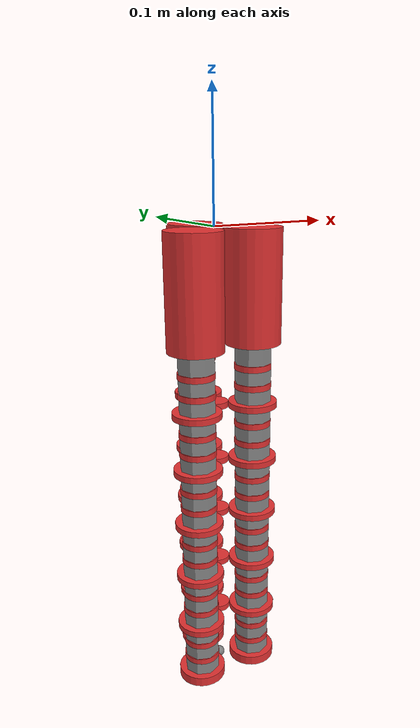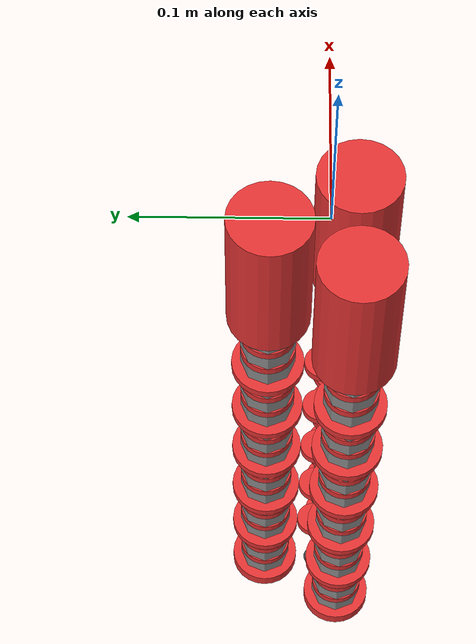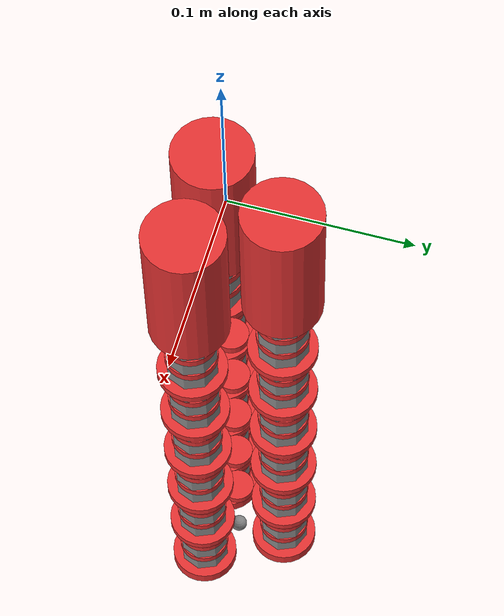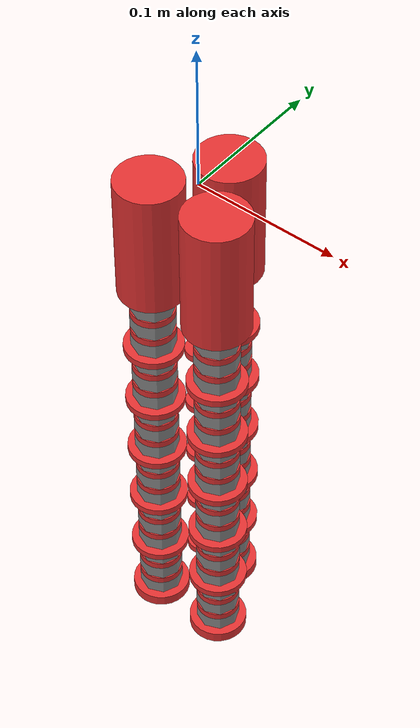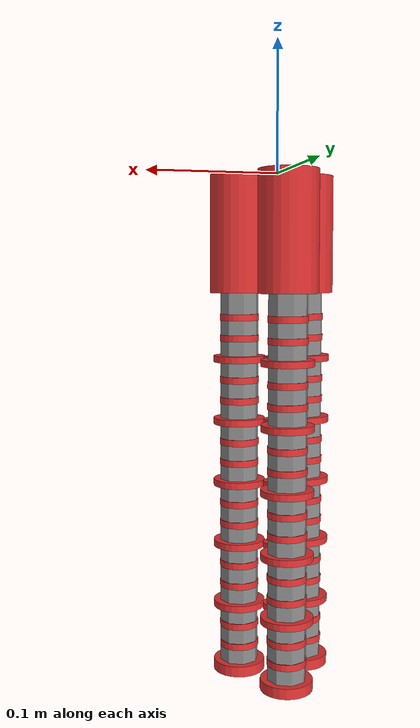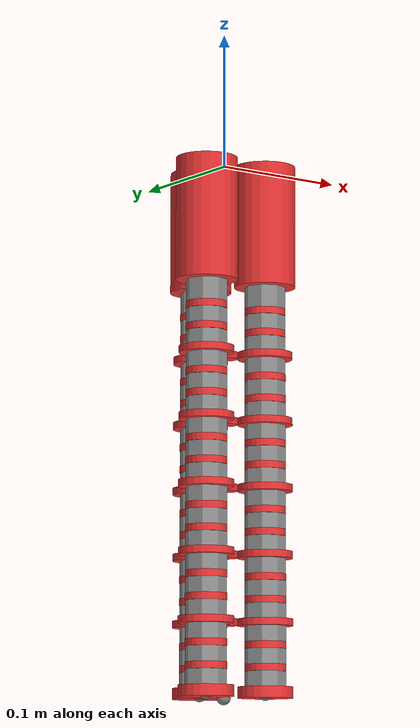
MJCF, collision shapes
<mujoco model="layer2">
    <asset>
        <material name="metal" rgba="0.58 0.58 0.58 1"/>
        <material name="silicone" rgba="0.1882 0.1882 0.1882 1"/>
        <material name="gray" rgba="0.4627 0.4627 0.4627 1"/>
        <material name="black" rgba="0.149 0.149 0.149 1"/>
        <material name="translucent_white_plastic" rgba="0.9 0.9 0.9 0.7" specular="0.8" shininess="0.6"/>
        <material name="matte_white_plastic" rgba="0.85 0.85 0.85 0.8" specular="0.2" shininess="0.1"/>
        <material name="acrylic_white_plastic" rgba="0.95 0.95 0.95 0.6" specular="0.9" shininess="0.9"/>
        <material name="clear_tube_plastic" rgba="1 1 1 0.35" specular="0.9" shininess="0.8" reflectance="0.2"/>
        <material name="matte_black_plastic" rgba="0.15 0.15 0.15 1" specular="0.1" shininess="0.1"/>
        <material name="polished_silver" rgba="0.8 0.8 0.8 1" specular="0.9" shininess="0.9"/>
        <mesh class="str" file="Cap.stl" />
        <mesh class="str" file="Mujoco_end.stl" />
        <mesh class="str" file="Mujoco_Fix_Ring.stl" />
        <model name="gripper" file="gripper.xml"/>
    </asset>
    <default>
        <default class="hingeB">
            <joint stiffness="0.125" damping="0.050" armature="0.01"/>
        </default>
        <default class="interZ">
            <joint type="slide" stiffness='5670' armature="0.012" damping="7"/>
        </default>
        <default class="secZ">
            <joint type="slide" stiffness='5670' armature="0.035" damping="11"/>
        </default>
        <default class="str">
            <mesh scale="0.001 0.001 0.001"/>
            <general biastype="affine"/>
        </default>
        <default class="vis">
            <geom contype="0" conaffinity="0" density="0" group="0"/>
        </default>
        <default class="col">
            <geom contype="1" conaffinity="1" group="3" rgba="0.9 0.2 0.2 0.25"/>
        </default>
    </default>
    <worldbody>
        <body name='layer_core'>
            <inertial pos="0.00 0.00 -0.047" quat="1 0 0 0" mass="0.452" diaginertia="6.975e-4 6.975e-4 5.153e-4"/>
            <geom class="vis" type="mesh" mesh="Mujoco_end" pos="0 0 0" euler= '180 0 0 ' material = 'matte_black_plastic'/>
            <geom class="col" name="Mujoco_end_col_1" type="cylinder" size="0.0225 0.0451" pos="0 0.03 -0.0451"/>
            <geom class="col" name="Mujoco_end_col_2" type="cylinder" size="0.0225 0.0451" pos="0.025981 -0.015 -0.0451"/>
            <geom class="col" name="Mujoco_end_col_3" type="cylinder" size="0.0225 0.0451" pos="-0.025981 -0.015 -0.0451"/>
            <site name="layer00" pos="0 0.03 -0.0854 "/>
            <site name="layer01" pos="0 0.03 -0.0902 "/>
            <site name="layer10" pos="0.025981 -0.015 -0.0854 "/>
            <site name="layer11" pos="0.025981 -0.015 -0.0902 "/>
            <site name="layer20" pos="-0.025981 -0.015 -0.0854 "/>
            <site name="layer21" pos="-0.025981 -0.015 -0.0902 "/>
            <body name='inter_1' pos= '0 0 -0.1064' euler='180 0 0'>
                <inertial pos="0.00 0.00 0.00125" quat="1 0 0 0" mass="0.0033" diaginertia="7.119e-7 7.119e-7 5.102e-7"/>
                <geom class="col" name="inter_1_1" type="cylinder" size="0.015 0.0025" pos="0 -0.03 0.0025 "/>
                <geom class="col" name="inter_1_2" type="cylinder" size="0.015 0.0025" pos="0.025981 0.015 0.0025 "/>
                <geom class="col" name="inter_1_3" type="cylinder" size="0.015 0.0025" pos="-0.025981 0.015 0.0025 "/>
                <joint name="inter_1_joint_x" class="hingeB" type="hinge" axis="1 0 0" pos="0 0 -0.0080  " limited="true" range="-6 6"/>
                <joint name="inter_1_joint_y" class="hingeB" type="hinge" axis="0 1 0" pos="0 0 -0.0080  " limited="true" range="-6 6"/>
                <joint name="inter_1_joint_z" class='interZ' type="slide" axis="0 0 1" pos="0 0 -0.0080  " limited="true" range="-0.0078 0.0010"/>
                <site name="layer02" pos="0 -0.03 0 "/>
                <site name="layer03" pos="0 -0.03 0.005 "/>
                <site name="layer12" pos="0.025981 0.015 0 "/>
                <site name="layer13" pos="0.025981 0.015 0.005 "/>
                <site name="layer22" pos="-0.025981 0.015 0 "/>
                <site name="layer23" pos="-0.025981 0.015 0.005 "/>
                <body name='inter_2' pos= '0 0 0.0161' euler='0 0 0'>
                    <inertial pos="0.00 0.00 0.00125" quat="1 0 0 0" mass="0.0033" diaginertia="7.119e-7 7.119e-7 5.102e-7"/>
                    <geom class="col" name="inter_2_1" type="cylinder" size="0.015 0.0025" pos="0 -0.03 0.0025 "/>
                    <geom class="col" name="inter_2_2" type="cylinder" size="0.015 0.0025" pos="0.025981 0.015 0.0025 "/>
                    <geom class="col" name="inter_2_3" type="cylinder" size="0.015 0.0025" pos="-0.025981 0.015 0.0025 "/>
                    <joint name="inter_2_joint_x" class="hingeB" type="hinge" axis="1 0 0" pos="0 0 -0.0080  " limited="true" range="-6 6"/>
                    <joint name="inter_2_joint_y" class="hingeB" type="hinge" axis="0 1 0" pos="0 0 -0.0080  " limited="true" range="-6 6"/>
                    <joint name="inter_2_joint_z" class='interZ' type="slide" axis="0 0 1" pos="0 0 -0.0080  " limited="true" range="-0.0078 0.0010"/>
                    <site name="layer04" pos="0 -0.03 0 "/>
                    <site name="layer05" pos="0 -0.03 0.005 "/>
                    <site name="layer14" pos="0.025981 0.015 0 "/>
                    <site name="layer15" pos="0.025981 0.015 0.005 "/>
                    <site name="layer24" pos="-0.025981 0.015 0 "/>
                    <site name="layer25" pos="-0.025981 0.015 0.005 "/>
                    <body name='sec_1' pos= '0 0 0.0161' euler='0 0 0'>
                        <inertial pos="0.00 0.00 0.0025" quat="1 0 0 0" mass="0.012" diaginertia="4.867e-6 4.867e-6 9.673e-6"/>
                        <geom class="vis" type="mesh" mesh="Mujoco_Fix_Ring" pos="0 0 0" material = 'matte_black_plastic'/>
                        <geom class="col" name="Mujoco_Fix_Ring_col_1_1" type="cylinder" size="0.02 0.0025" pos="0 -0.03 0.0025 "/>
                        <geom class="col" name="Mujoco_Fix_Ring_col_1_2" type="cylinder" size="0.02 0.0025" pos="0.025981 0.015 0.0025 "/>
                        <geom class="col" name="Mujoco_Fix_Ring_col_1_3" type="cylinder" size="0.02 0.0025" pos="-0.025981 0.015 0.0025 "/>
                        <geom class="col" name="Mujoco_Fix_Ring_col_1_4" type="cylinder" size="0.01 0.0025" pos="0 0 0.0025 "/>
                        <joint name="sec_1_joint_x" class="hingeB" type="hinge" axis="1 0 0" pos="0 0 -0.0080  " limited="true" range="-6 6"/>
                        <joint name="sec_1_joint_y" class="hingeB" type="hinge" axis="0 1 0" pos="0 0 -0.0080  " limited="true" range="-6 6"/>
                        <joint name="sec_1_joint_z" class='secZ' type="slide" axis="0 0 1" pos="0 0 -0.0080  " limited="true" range="-0.0078 0.0010" />
                        <site name="layer06" pos="0 -0.03 0 "/>
                        <site name="layer07" pos="0 -0.03 0.005 "/>
                        <site name="layer16" pos="0.025981 0.015 0 "/>
                        <site name="layer17" pos="0.025981 0.015 0.005 "/>
                        <site name="layer26" pos="-0.025981 0.015 0 "/>
                        <site name="layer27" pos="-0.025981 0.015 0.005 "/>
                        <body name='inter_3' pos= '0 0 0.0162' euler='0 0 0'>
                            <inertial pos="0.00 0.00 0.00125" quat="1 0 0 0" mass="0.0033" diaginertia="7.119e-7 7.119e-7 5.102e-7"/>
                            <geom class="col" name="inter_3_1" type="cylinder" size="0.015 0.0025" pos="0 -0.03 0.0025 "/>
                            <geom class="col" name="inter_3_2" type="cylinder" size="0.015 0.0025" pos="0.025981 0.015 0.0025 "/>
                            <geom class="col" name="inter_3_3" type="cylinder" size="0.015 0.0025" pos="-0.025981 0.015 0.0025 "/>
                            <joint name="inter_3_joint_x" class="hingeB" type="hinge" axis="1 0 0" pos="0 0 -0.0080  " limited="true" range="-6 6"/>
                            <joint name="inter_3_joint_y" class="hingeB" type="hinge" axis="0 1 0" pos="0 0 -0.0080  " limited="true" range="-6 6"/>
                            <joint name="inter_3_joint_z" class='interZ' type="slide" axis="0 0 1" pos="0 0 -0.0080  " limited="true" range="-0.0078 0.0010" />
                            <site name="layer08" pos="0 -0.03 0 "/>
                            <site name="layer09" pos="0 -0.03 0.005 "/>
                            <site name="layer18" pos="0.025981 0.015 0 "/>
                            <site name="layer19" pos="0.025981 0.015 0.005 "/>
                            <site name="layer28" pos="-0.025981 0.015 0 "/>
                            <site name="layer29" pos="-0.025981 0.015 0.005 "/>
                            <body name='inter_4' pos= '0 0 0.0161' euler='0 0 0'>
                                <inertial pos="0.00 0.00 0.00125" quat="1 0 0 0" mass="0.0033" diaginertia="7.119e-7 7.119e-7 5.102e-7"/>
                                <geom class="col" name="inter_4_1" type="cylinder" size="0.015 0.0025" pos="0 -0.03 0.0025 "/>
                                <geom class="col" name="inter_4_2" type="cylinder" size="0.015 0.0025" pos="0.025981 0.015 0.0025 "/>
                                <geom class="col" name="inter_4_3" type="cylinder" size="0.015 0.0025" pos="-0.025981 0.015 0.0025 "/>
                                <joint name="inter_4_joint_x" class="hingeB" type="hinge" axis="1 0 0" pos="0 0 -0.0080  " limited="true" range="-6 6"/>
                                <joint name="inter_4_joint_y" class="hingeB" type="hinge" axis="0 1 0" pos="0 0 -0.0080  " limited="true" range="-6 6"/>
                                <joint name="inter_4_joint_z" class='interZ' type="slide" axis="0 0 1" pos="0 0 -0.0080  " limited="true" range="-0.0078 0.0010" />
                                <site name="layer010" pos="0 -0.03 0 "/>
                                <site name="layer011" pos="0 -0.03 0.005 "/>
                                <site name="layer110" pos="0.025981 0.015 0 "/>
                                <site name="layer111" pos="0.025981 0.015 0.005 "/>
                                <site name="layer210" pos="-0.025981 0.015 0 "/>
                                <site name="layer211" pos="-0.025981 0.015 0.005 "/>
                                <body name='sec_2' pos= '0 0 0.0161' euler='0 0 0'>
                                    <inertial pos="0.00 0.00 0.0025" quat="1 0 0 0" mass="0.012" diaginertia="4.867e-6 4.867e-6 9.673e-6"/>
                                    <geom class="vis" type="mesh" mesh="Mujoco_Fix_Ring" pos="0 0 0" material = 'matte_black_plastic'/>
                                    <geom class="col" name="Mujoco_Fix_Ring_col_2_1" type="cylinder" size="0.02 0.0025" pos="0 -0.03 0.0025 "/>
                                    <geom class="col" name="Mujoco_Fix_Ring_col_2_2" type="cylinder" size="0.02 0.0025" pos="0.025981 0.015 0.0025 "/>
                                    <geom class="col" name="Mujoco_Fix_Ring_col_2_3" type="cylinder" size="0.02 0.0025" pos="-0.025981 0.015 0.0025 "/>
                                    <geom class="col" name="Mujoco_Fix_Ring_col_2_4" type="cylinder" size="0.01 0.0025" pos="0 0 0.0025 "/>
                                    <joint name="sec_2_joint_x" class="hingeB" type="hinge" axis="1 0 0" pos="0 0 -0.0080  " limited="true" range="-6 6"/>
                                    <joint name="sec_2_joint_y" class="hingeB" type="hinge" axis="0 1 0" pos="0 0 -0.0080  " limited="true" range="-6 6"/>
                                    <joint name="sec_2_joint_z" class='secZ' type="slide" axis="0 0 1" pos="0 0 -0.0080  " limited="true" range="-0.0078 0.0010" />
                                    <site name="layer012" pos="0 -0.03 0 "/>
                                    <site name="layer013" pos="0 -0.03 0.005 "/>
                                    <site name="layer112" pos="0.025981 0.015 0 "/>
                                    <site name="layer113" pos="0.025981 0.015 0.005 "/>
                                    <site name="layer212" pos="-0.025981 0.015 0 "/>
                                    <site name="layer213" pos="-0.025981 0.015 0.005 "/>
                                    <body name='inter_5' pos= '0 0 0.0162' euler='0 0 0'>
                                        <inertial pos="0.00 0.00 0.00125" quat="1 0 0 0" mass="0.0033" diaginertia="7.119e-7 7.119e-7 5.102e-7"/>
                                        <geom class="col" name="inter_5_1" type="cylinder" size="0.015 0.0025" pos="0 -0.03 0.0025 "/>
                                        <geom class="col" name="inter_5_2" type="cylinder" size="0.015 0.0025" pos="0.025981 0.015 0.0025 "/>
                                        <geom class="col" name="inter_5_3" type="cylinder" size="0.015 0.0025" pos="-0.025981 0.015 0.0025 "/>
                                        <joint name="inter_5_joint_x" class="hingeB" type="hinge" axis="1 0 0" pos="0 0 -0.0080  " limited="true" range="-6 6"/>
                                        <joint name="inter_5_joint_y" class="hingeB" type="hinge" axis="0 1 0" pos="0 0 -0.0080  " limited="true" range="-6 6"/>
                                        <joint name="inter_5_joint_z" class='interZ' type="slide" axis="0 0 1" pos="0 0 -0.0080  " limited="true" range="-0.0078 0.0010" />
                                        <site name="layer014" pos="0 -0.03 0 "/>
                                        <site name="layer015" pos="0 -0.03 0.005 "/>
                                        <site name="layer114" pos="0.025981 0.015 0 "/>
                                        <site name="layer115" pos="0.025981 0.015 0.005 "/>
                                        <site name="layer214" pos="-0.025981 0.015 0 "/>
                                        <site name="layer215" pos="-0.025981 0.015 0.005 "/>
                                        <body name='inter_6' pos= '0 0 0.0161' euler='0 0 0'>
                                            <inertial pos="0.00 0.00 0.00125" quat="1 0 0 0" mass="0.0033" diaginertia="7.119e-7 7.119e-7 5.102e-7"/>
                                            <geom class="col" name="inter_6_1" type="cylinder" size="0.015 0.0025" pos="0 -0.03 0.0025 "/>
                                            <geom class="col" name="inter_6_2" type="cylinder" size="0.015 0.0025" pos="0.025981 0.015 0.0025 "/>
                                            <geom class="col" name="inter_6_3" type="cylinder" size="0.015 0.0025" pos="-0.025981 0.015 0.0025 "/>
                                            <joint name="inter_6_joint_x" class="hingeB" type="hinge" axis="1 0 0" pos="0 0 -0.0080  " limited="true" range="-6 6"/>
                                            <joint name="inter_6_joint_y" class="hingeB" type="hinge" axis="0 1 0" pos="0 0 -0.0080  " limited="true" range="-6 6"/>
                                            <joint name="inter_6_joint_z" class='interZ' type="slide" axis="0 0 1" pos="0 0 -0.0080  " limited="true" range="-0.0078 0.0010" />
                                            <site name="layer016" pos="0 -0.03 0 "/>
                                            <site name="layer017" pos="0 -0.03 0.005 "/>
                                            <site name="layer116" pos="0.025981 0.015 0 "/>
                                            <site name="layer117" pos="0.025981 0.015 0.005 "/>
                                            <site name="layer216" pos="-0.025981 0.015 0 "/>
                                            <site name="layer217" pos="-0.025981 0.015 0.005 "/>
                                            <body name='sec_3' pos= '0 0 0.0161' euler='0 0 0'>
                                                <inertial pos="0.00 0.00 0.0025" quat="1 0 0 0" mass="0.012" diaginertia="4.867e-6 4.867e-6 9.673e-6"/>
                                                <geom class="vis" type="mesh" mesh="Mujoco_Fix_Ring" pos="0 0 0" material = 'matte_black_plastic'/>
                                                <geom class="col" name="Mujoco_Fix_Ring_col_3_1" type="cylinder" size="0.02 0.0025" pos="0 -0.03 0.0025 "/>
                                                <geom class="col" name="Mujoco_Fix_Ring_col_3_2" type="cylinder" size="0.02 0.0025" pos="0.025981 0.015 0.0025 "/>
                                                <geom class="col" name="Mujoco_Fix_Ring_col_3_3" type="cylinder" size="0.02 0.0025" pos="-0.025981 0.015 0.0025 "/>
                                                <geom class="col" name="Mujoco_Fix_Ring_col_3_4" type="cylinder" size="0.01 0.0025" pos="0 0 0.0025 "/>
                                                <joint name="sec_3_joint_x" class="hingeB" type="hinge" axis="1 0 0" pos="0 0 -0.0080  " limited="true" range="-8 8"/>
                                                <joint name="sec_3_joint_y" class="hingeB" type="hinge" axis="0 1 0" pos="0 0 -0.0080  " limited="true" range="-8 8"/>
                                                <joint name="sec_3_joint_z" class='secZ' type="slide" axis="0 0 1" pos="0 0 -0.0080  " limited="true" range="-0.0078 0.0010" />
                                                <site name="layer018" pos="0 -0.03 0 "/>
                                                <site name="layer019" pos="0 -0.03 0.005 "/>
                                                <site name="layer118" pos="0.025981 0.015 0 "/>
                                                <site name="layer119" pos="0.025981 0.015 0.005 "/>
                                                <site name="layer218" pos="-0.025981 0.015 0 "/>
                                                <site name="layer219" pos="-0.025981 0.015 0.005 "/>
                                                <body name='inter_7' pos= '0 0 0.0162' euler='0 0 0'>
                                                    <inertial pos="0.00 0.00 0.00125" quat="1 0 0 0" mass="0.0033" diaginertia="7.119e-7 7.119e-7 5.102e-7"/>
                                                    <geom class="col" name="inter_7_1" type="cylinder" size="0.015 0.0025" pos="0 -0.03 0.0025 "/>
                                                    <geom class="col" name="inter_7_2" type="cylinder" size="0.015 0.0025" pos="0.025981 0.015 0.0025 "/>
                                                    <geom class="col" name="inter_7_3" type="cylinder" size="0.015 0.0025" pos="-0.025981 0.015 0.0025 "/>
                                                    <joint name="inter_7_joint_x" class="hingeB" type="hinge" axis="1 0 0" pos="0 0 -0.0080  " limited="true" range="-8 8"/>
                                                    <joint name="inter_7_joint_y" class="hingeB" type="hinge" axis="0 1 0" pos="0 0 -0.0080  " limited="true" range="-8 8"/>
                                                    <joint name="inter_7_joint_z" class='interZ' type="slide" axis="0 0 1" pos="0 0 -0.0080  " limited="true" range="-0.0078 0.0010" />
                                                    <site name="layer020" pos="0 -0.03 0 "/>
                                                    <site name="layer021" pos="0 -0.03 0.005 "/>
                                                    <site name="layer120" pos="0.025981 0.015 0 "/>
                                                    <site name="layer121" pos="0.025981 0.015 0.005 "/>
                                                    <site name="layer220" pos="-0.025981 0.015 0 "/>
                                                    <site name="layer221" pos="-0.025981 0.015 0.005 "/>
                                                    <body name='inter_8' pos= '0 0 0.0161' euler='0 0 0'>
                                                        <inertial pos="0.00 0.00 0.00125" quat="1 0 0 0" mass="0.0033" diaginertia="7.119e-7 7.119e-7 5.102e-7"/>
                                                        <geom class="col" name="inter_8_1" type="cylinder" size="0.015 0.0025" pos="0 -0.03 0.0025 "/>
                                                        <geom class="col" name="inter_8_2" type="cylinder" size="0.015 0.0025" pos="0.025981 0.015 0.0025 "/>
                                                        <geom class="col" name="inter_8_3" type="cylinder" size="0.015 0.0025" pos="-0.025981 0.015 0.0025 "/>
                                                        <joint name="inter_8_joint_x" class="hingeB" type="hinge" axis="1 0 0" pos="0 0 -0.0080  " limited="true" range="-8 8"/>
                                                        <joint name="inter_8_joint_y" class="hingeB" type="hinge" axis="0 1 0" pos="0 0 -0.0080  " limited="true" range="-8 8"/>
                                                        <joint name="inter_8_joint_z" class='interZ' type="slide" axis="0 0 1" pos="0 0 -0.0080  " limited="true" range="-0.0078 0.0010" />
                                                        <site name="layer022" pos="0 -0.03 0 "/>
                                                        <site name="layer023" pos="0 -0.03 0.005 "/>
                                                        <site name="layer122" pos="0.025981 0.015 0 "/>
                                                        <site name="layer123" pos="0.025981 0.015 0.005 "/>
                                                        <site name="layer222" pos="-0.025981 0.015 0 "/>
                                                        <site name="layer223" pos="-0.025981 0.015 0.005 "/>
                                                        <body name='sec_4' pos= '0 0 0.0161' euler='0 0 0'>
                                                            <inertial pos="0.00 0.00 0.0025" quat="1 0 0 0" mass="0.012" diaginertia="4.867e-6 4.867e-6 9.673e-6"/>
                                                            <geom class="vis" type="mesh" mesh="Mujoco_Fix_Ring" pos="0 0 0" material = 'matte_black_plastic'/>
                                                            <geom class="col" name="Mujoco_Fix_Ring_col_4_1" type="cylinder" size="0.02 0.0025" pos="0 -0.03 0.0025 "/>
                                                            <geom class="col" name="Mujoco_Fix_Ring_col_4_2" type="cylinder" size="0.02 0.0025" pos="0.025981 0.015 0.0025 "/>
                                                            <geom class="col" name="Mujoco_Fix_Ring_col_4_3" type="cylinder" size="0.02 0.0025" pos="-0.025981 0.015 0.0025 "/>
                                                            <geom class="col" name="Mujoco_Fix_Ring_col_4_4" type="cylinder" size="0.01 0.0025" pos="0 0 0.0025 "/>
                                                            <joint name="sec_4_joint_x" class="hingeB" type="hinge" axis="1 0 0" pos="0 0 -0.0080  " limited="true" range="-8 8"/>
                                                            <joint name="sec_4_joint_y" class="hingeB" type="hinge" axis="0 1 0" pos="0 0 -0.0080  " limited="true" range="-8 8"/>
                                                            <joint name="sec_4_joint_z" class='secZ' type="slide" axis="0 0 1" pos="0 0 -0.0080  " limited="true" range="-0.0078 0.0010" />
                                                            <site name="layer024" pos="0 -0.03 0 "/>
                                                            <site name="layer025" pos="0 -0.03 0.005 "/>
                                                            <site name="layer124" pos="0.025981 0.015 0 "/>
                                                            <site name="layer125" pos="0.025981 0.015 0.005 "/>
                                                            <site name="layer224" pos="-0.025981 0.015 0 "/>
                                                            <site name="layer225" pos="-0.025981 0.015 0.005 "/>
                                                            <body name='inter_9' pos= '0 0 0.0162' euler='0 0 0'>
                                                                <inertial pos="0.00 0.00 0.00125" quat="1 0 0 0" mass="0.0033" diaginertia="7.119e-7 7.119e-7 5.102e-7"/>
                                                                <geom class="col" name="inter_9_1" type="cylinder" size="0.015 0.0025" pos="0 -0.03 0.0025 "/>
                                                                <geom class="col" name="inter_9_2" type="cylinder" size="0.015 0.0025" pos="0.025981 0.015 0.0025 "/>
                                                                <geom class="col" name="inter_9_3" type="cylinder" size="0.015 0.0025" pos="-0.025981 0.015 0.0025 "/>
                                                                <joint name="inter_9_joint_x" class="hingeB" type="hinge" axis="1 0 0" pos="0 0 -0.0080  " limited="true" range="-8 8"/>
                                                                <joint name="inter_9_joint_y" class="hingeB" type="hinge" axis="0 1 0" pos="0 0 -0.0080  " limited="true" range="-8 8"/>
                                                                <joint name="inter_9_joint_z" class='interZ' type="slide" axis="0 0 1" pos="0 0 -0.0080  " limited="true" range="-0.0078 0.0010" />
                                                                <site name="layer026" pos="0 -0.03 0 "/>
                                                                <site name="layer027" pos="0 -0.03 0.005 "/>
                                                                <site name="layer126" pos="0.025981 0.015 0 "/>
                                                                <site name="layer127" pos="0.025981 0.015 0.005 "/>
                                                                <site name="layer226" pos="-0.025981 0.015 0 "/>
                                                                <site name="layer227" pos="-0.025981 0.015 0.005 "/>
                                                                <body name='inter_10' pos= '0 0 0.0162' euler='0 0 0'>
                                                                    <inertial pos="0.00 0.00 0.00125" quat="1 0 0 0" mass="0.0033" diaginertia="7.119e-7 7.119e-7 5.102e-7"/>
                                                                    <geom class="col" name="inter_10_1" type="cylinder" size="0.015 0.0025" pos="0 -0.03 0.0025 "/>
                                                                    <geom class="col" name="inter_10_2" type="cylinder" size="0.015 0.0025" pos="0.025981 0.015 0.0025 "/>
                                                                    <geom class="col" name="inter_10_3" type="cylinder" size="0.015 0.0025" pos="-0.025981 0.015 0.0025 "/>
                                                                    <joint name="inter_10_joint_x" class="hingeB" type="hinge" axis="1 0 0" pos="0 0 -0.0080  " limited="true" range="-8 8"/>
                                                                    <joint name="inter_10_joint_y" class="hingeB" type="hinge" axis="0 1 0" pos="0 0 -0.0080  " limited="true" range="-8 8"/>
                                                                    <joint name="inter_10_joint_z" class='interZ' type="slide" axis="0 0 1" pos="0 0 -0.0080  " limited="true" range="-0.0078 0.0010" />
                                                                    <site name="layer028" pos="0 -0.03 0 "/>
                                                                    <site name="layer029" pos="0 -0.03 0.005 "/>
                                                                    <site name="layer128" pos="0.025981 0.015 0 "/>
                                                                    <site name="layer129" pos="0.025981 0.015 0.005 "/>
                                                                    <site name="layer228" pos="-0.025981 0.015 0 "/>
                                                                    <site name="layer229" pos="-0.025981 0.015 0.005 "/>
                                                                    <body name='sec_5' pos= '0 0 0.0161' euler='0 0 0'>
                                                                        <inertial pos="0.00 0.00 0.0025" quat="1 0 0 0" mass="0.012" diaginertia="4.867e-6 4.867e-6 9.673e-6"/>
                                                                        <geom class="vis" type="mesh" mesh="Mujoco_Fix_Ring" pos="0 0 0" material = 'matte_black_plastic'/>
                                                                        <geom class="col" name="Mujoco_Fix_Ring_col_5_1" type="cylinder" size="0.02 0.0025" pos="0 -0.03 0.0025 "/>
                                                                        <geom class="col" name="Mujoco_Fix_Ring_col_5_2" type="cylinder" size="0.02 0.0025" pos="0.025981 0.015 0.0025 "/>
                                                                        <geom class="col" name="Mujoco_Fix_Ring_col_5_3" type="cylinder" size="0.02 0.0025" pos="-0.025981 0.015 0.0025 "/>
                                                                        <geom class="col" name="Mujoco_Fix_Ring_col_5_4" type="cylinder" size="0.01 0.0025" pos="0 0 0.0025 "/>
                                                                        <joint name="sec_5_joint_x" class="hingeB" type="hinge" axis="1 0 0" pos="0 0 -0.0080" limited="true" range="-8 8"/>
                                                                        <joint name="sec_5_joint_y" class="hingeB" type="hinge" axis="0 1 0" pos="0 0 -0.0080" limited="true" range="-8 8"/>
                                                                        <joint name="sec_5_joint_z" class='secZ' type="slide" axis="0 0 1" pos="0 0 -0.0080" limited="true" range="-0.0078 0.0010" />
                                                                        <site name="layer030" pos="0 -0.03 0 "/>
                                                                        <site name="layer031" pos="0 -0.03 0.005 "/>
                                                                        <site name="layer130" pos="0.025981 0.015 0 "/>
                                                                        <site name="layer131" pos="0.025981 0.015 0.005 "/>
                                                                        <site name="layer230" pos="-0.025981 0.015 0 "/>
                                                                        <site name="layer231" pos="-0.025981 0.015 0.005 "/>
                                                                        <body name='inter_11' pos= '0 0 0.0162' euler='0 0 0'>
                                                                            <inertial pos="0.00 0.00 0.00125" quat="1 0 0 0" mass="0.0033" diaginertia="7.119e-7 7.119e-7 5.102e-7"/>
                                                                            <geom class="col" name="inter_11_1" type="cylinder" size="0.015 0.0025" pos="0 -0.03 0.0025 "/>
                                                                            <geom class="col" name="inter_11_2" type="cylinder" size="0.015 0.0025" pos="0.025981 0.015 0.0025 "/>
                                                                            <geom class="col" name="inter_11_3" type="cylinder" size="0.015 0.0025" pos="-0.025981 0.015 0.0025 "/>
                                                                            <joint name="inter_11_joint_x" class="hingeB" type="hinge" axis="1 0 0" pos="0 0 -0.0080" limited="true" range="-8 8"/>
                                                                            <joint name="inter_11_joint_y" class="hingeB" type="hinge" axis="0 1 0" pos="0 0 -0.0080" limited="true" range="-8 8"/>
                                                                            <joint name="inter_11_joint_z" class='interZ' type="slide" axis="0 0 1" pos="0 0 -0.0080" limited="true" range="-0.0078 0.0010" />
                                                                            <site name="layer032" pos="0 -0.03 0 "/>
                                                                            <site name="layer033" pos="0 -0.03 0.005 "/>
                                                                            <site name="layer132" pos="0.025981 0.015 0 "/>
                                                                            <site name="layer133" pos="0.025981 0.015 0.005 "/>
                                                                            <site name="layer232" pos="-0.025981 0.015 0 "/>
                                                                            <site name="layer233" pos="-0.025981 0.015 0.005 "/>
                                                                            <body name='inter_12' pos= '0 0 0.0161' euler='0 0 0'>
                                                                                <inertial pos="0.00 0.00 0.00125" quat="1 0 0 0" mass="0.0033" diaginertia="7.119e-7 7.119e-7 5.102e-7"/>
                                                                                <geom class="col" name="inter_12_1" type="cylinder" size="0.015 0.0025" pos="0 -0.03 0.0025 "/>
                                                                                <geom class="col" name="inter_12_2" type="cylinder" size="0.015 0.0025" pos="0.025981 0.015 0.0025 "/>
                                                                                <geom class="col" name="inter_12_3" type="cylinder" size="0.015 0.0025" pos="-0.025981 0.015 0.0025 "/>
                                                                                <joint name="inter_12_joint_x" class="hingeB" type="hinge" axis="1 0 0" pos="0 0 -0.0080" limited="true" range="-8 8"/>
                                                                                <joint name="inter_12_joint_y" class="hingeB" type="hinge" axis="0 1 0" pos="0 0 -0.0080" limited="true" range="-8 8"/>
                                                                                <joint name="inter_12_joint_z" class='interZ' type="slide" axis="0 0 1" pos="0 0 -0.0080" limited="true" range="-0.0078 0.0010" />
                                                                                <site name="layer034" pos="0 -0.03 0 "/>
                                                                                <site name="layer035" pos="0 -0.03 0.005 "/>
                                                                                <site name="layer134" pos="0.025981 0.015 0 "/>
                                                                                <site name="layer135" pos="0.025981 0.015 0.005 "/>
                                                                                <site name="layer234" pos="-0.025981 0.015 0 "/>
                                                                                <site name="layer235" pos="-0.025981 0.015 0.005 "/>
                                                                                <body name='sec_6' pos= '0 0 0.0161' euler='0 0 180'>
                                                                                    <inertial pos="0.00 0.00 0.0045" quat="1 0 0 0" mass="0.036" diaginertia="2.092e-6 2.092e-6 4.135e-6"/>
                                                                                    <geom class="vis" type="mesh" mesh="Cap" pos="0 0 0" material = 'matte_black_plastic'/>
                                                                                    <geom class="col" name="Cap_1" type="cylinder" size="0.02 0.004" pos="0 0.03 0.004 "/>
                                                                                    <geom class="col" name="Cap_2" type="cylinder" size="0.02 0.004" pos="0.025981 -0.015 0.004 "/>
                                                                                    <geom class="col" name="Cap_3" type="cylinder" size="0.02 0.004" pos="-0.025981 -0.015 0.004 "/>
                                                                                    <joint name="sec_6_joint_x" class="hingeB" type="hinge" axis="1 0 0" pos="0 0 -0.0080  " limited="true" range="-8 8"/>
                                                                                    <joint name="sec_6_joint_y" class="hingeB" type="hinge" axis="0 1 0" pos="0 0 -0.0080  " limited="true" range="-8 8"/>
                                                                                    <joint name="sec_6_joint_z" class='secZ' type="slide" axis="0 0 1" pos="0 0 -0.0080  " limited="true" range="-0.0078 0.0010" />
                                                                                    <site name="layer036" pos="0 0.03 0.0048 "/>
                                                                                    <site name="layer037" pos="0 0.03 0 "/>
                                                                                    <site name="layer136" pos="-0.025981 -0.015 0.0048 "/>
                                                                                    <site name="layer137" pos="-0.025981 -0.015 0 "/>
                                                                                    <site name="layer236" pos="0.025981 -0.015 0.0048 "/>
                                                                                    <site name="layer237" pos="0.025981 -0.015 0 "/>
                                                                                    <body name="mount" pos= '0 0 0.008' euler='0 0 0 '>
                                                                                        <site name="end_effector" pos="0 0 0 "/>
                                                                                    </body>
                                                                                </body>
                                                                            </body>
                                                                        </body>
                                                                    </body>
                                                                </body>
                                                            </body>
                                                        </body>
                                                    </body>
                                                </body>
                                            </body>
                                        </body>
                                    </body>
                                </body>
                            </body>
                        </body>
                    </body>
                </body>
            </body>
        </body>
    </worldbody>
    <tendon >
        <spatial name="layer00" range=".15 .33" limited="true" width=".015" rgba="0.55 0.55 0.55 1" stiffness='128' damping= '2'>
            <site site="layer00"/>
            <site site="layer01"/>
            <site site="layer02"/>
            <site site="layer03"/>
            <site site="layer04"/>
            <site site="layer05"/>
            <site site="layer06"/>
            <site site="layer07"/>
            <site site="layer08"/>
            <site site="layer09"/>
            <site site="layer010"/>
            <site site="layer011"/>
            <site site="layer012"/>
            <site site="layer013"/>
            <site site="layer014"/>
            <site site="layer015"/>
            <site site="layer016"/>
            <site site="layer017"/>
            <site site="layer018"/>
            <site site="layer019"/>
            <site site="layer020"/>
            <site site="layer021"/>
            <site site="layer022"/>
            <site site="layer023"/>
            <site site="layer024"/>
            <site site="layer026"/>
            <site site="layer027"/>
            <site site="layer028"/>
            <site site="layer029"/>
            <site site="layer030"/>
            <site site="layer031"/>
            <site site="layer032"/>
            <site site="layer033"/>
            <site site="layer034"/>
            <site site="layer035"/>
            <site site="layer036"/>
            <site site="layer037"/>
        </spatial>
        <spatial name="layer01" range=".15 .33" limited="true" width=".015" rgba="0.55 0.55 0.55 1" stiffness='128' damping= '2'>
            <site site="layer10"/>
            <site site="layer11"/>
            <site site="layer12"/>
            <site site="layer13"/>
            <site site="layer14"/>
            <site site="layer15"/>
            <site site="layer16"/>
            <site site="layer17"/>
            <site site="layer18"/>
            <site site="layer19"/>
            <site site="layer110"/>
            <site site="layer111"/>
            <site site="layer112"/>
            <site site="layer113"/>
            <site site="layer114"/>
            <site site="layer115"/>
            <site site="layer116"/>
            <site site="layer117"/>
            <site site="layer118"/>
            <site site="layer119"/>
            <site site="layer120"/>
            <site site="layer121"/>
            <site site="layer122"/>
            <site site="layer123"/>
            <site site="layer124"/>
            <site site="layer126"/>
            <site site="layer127"/>
            <site site="layer128"/>
            <site site="layer129"/>
            <site site="layer130"/>
            <site site="layer131"/>
            <site site="layer132"/>
            <site site="layer133"/>
            <site site="layer134"/>
            <site site="layer135"/>
            <site site="layer136"/>
            <site site="layer137"/>
        </spatial>
        <spatial name="layer02" range=".15 .33" limited="true" width=".015" rgba="0.55 0.55 0.55 1" stiffness='128' damping= '2'>
            <site site="layer20"/>
            <site site="layer21"/>
            <site site="layer22"/>
            <site site="layer23"/>
            <site site="layer24"/>
            <site site="layer25"/>
            <site site="layer26"/>
            <site site="layer27"/>
            <site site="layer28"/>
            <site site="layer29"/>
            <site site="layer210"/>
            <site site="layer211"/>
            <site site="layer212"/>
            <site site="layer213"/>
            <site site="layer214"/>
            <site site="layer215"/>
            <site site="layer216"/>
            <site site="layer217"/>
            <site site="layer218"/>
            <site site="layer219"/>
            <site site="layer220"/>
            <site site="layer221"/>
            <site site="layer222"/>
            <site site="layer223"/>
            <site site="layer224"/>
            <site site="layer226"/>
            <site site="layer227"/>
            <site site="layer228"/>
            <site site="layer229"/>
            <site site="layer230"/>
            <site site="layer231"/>
            <site site="layer232"/>
            <site site="layer233"/>
            <site site="layer234"/>
            <site site="layer235"/>
            <site site="layer236"/>
            <site site="layer237"/>
        </spatial>
    </tendon>
    <equality>
        <joint joint1="inter_1_joint_x" joint2="inter_2_joint_x" polycoef="0 1 0 0 0"/>
        <joint joint1="inter_1_joint_y" joint2="inter_2_joint_y" polycoef="0 1 0 0 0"/>
        <joint joint1="inter_2_joint_x" joint2="sec_1_joint_x" polycoef="0 1 0 0 0"/>
        <joint joint1="inter_2_joint_y" joint2="sec_1_joint_y" polycoef="0 1 0 0 0"/>
        <joint joint1="sec_1_joint_x" joint2="inter_3_joint_x" polycoef="0 1 0 0 0"/>
        <joint joint1="sec_1_joint_y" joint2="inter_3_joint_y" polycoef="0 1 0 0 0"/>
        <joint joint1="inter_3_joint_x" joint2="inter_4_joint_x" polycoef="0 1 0 0 0"/>
        <joint joint1="inter_3_joint_y" joint2="inter_4_joint_y" polycoef="0 1 0 0 0"/>
        <joint joint1="inter_4_joint_x" joint2="sec_2_joint_x" polycoef="0 1 0 0 0"/>
        <joint joint1="inter_4_joint_y" joint2="sec_2_joint_y" polycoef="0 1 0 0 0"/>
        <joint joint1="sec_2_joint_x" joint2="inter_5_joint_x" polycoef="0 1 0 0 0"/>
        <joint joint1="sec_2_joint_y" joint2="inter_5_joint_y" polycoef="0 1 0 0 0"/>
        <joint joint1="inter_5_joint_x" joint2="inter_6_joint_x" polycoef="0 1 0 0 0"/>
        <joint joint1="inter_5_joint_y" joint2="inter_6_joint_y" polycoef="0 1 0 0 0"/>
        <joint joint1="inter_6_joint_x" joint2="sec_3_joint_x" polycoef="0 1 0 0 0"/>
        <joint joint1="inter_6_joint_y" joint2="sec_3_joint_y" polycoef="0 1 0 0 0"/>
        <joint joint1="sec_3_joint_x" joint2="inter_7_joint_x" polycoef="0 1 0 0 0"/>
        <joint joint1="sec_3_joint_y" joint2="inter_7_joint_y" polycoef="0 1 0 0 0"/>
        <joint joint1="inter_7_joint_x" joint2="inter_8_joint_x" polycoef="0 1 0 0 0"/>
        <joint joint1="inter_7_joint_y" joint2="inter_8_joint_y" polycoef="0 1 0 0 0"/>
        <joint joint1="inter_8_joint_x" joint2="sec_4_joint_x" polycoef="0 1 0 0 0"/>
        <joint joint1="inter_8_joint_y" joint2="sec_4_joint_y" polycoef="0 1 0 0 0"/>
        <joint joint1="sec_4_joint_x" joint2="inter_9_joint_x" polycoef="0 1 0 0 0"/>
        <joint joint1="sec_4_joint_y" joint2="inter_9_joint_y" polycoef="0 1 0 0 0"/>
        <joint joint1="inter_9_joint_x" joint2="inter_10_joint_x" polycoef="0 1 0 0 0"/>
        <joint joint1="inter_9_joint_y" joint2="inter_10_joint_y" polycoef="0 1 0 0 0"/>
        <joint joint1="inter_10_joint_x" joint2="sec_5_joint_x" polycoef="0 1 0 0 0"/>
        <joint joint1="inter_10_joint_y" joint2="sec_5_joint_y" polycoef="0 1 0 0 0"/>
        <joint joint1="sec_5_joint_x" joint2="inter_11_joint_x" polycoef="0 1 0 0 0"/>
        <joint joint1="sec_5_joint_y" joint2="inter_11_joint_y" polycoef="0 1 0 0 0"/>
        <joint joint1="inter_11_joint_x" joint2="inter_12_joint_x" polycoef="0 1 0 0 0"/>
        <joint joint1="inter_11_joint_y" joint2="inter_12_joint_y" polycoef="0 1 0 0 0"/>
        <joint joint1="inter_12_joint_x" joint2="sec_6_joint_x" polycoef="0 1 0 0 0"/>
        <joint joint1="inter_12_joint_y" joint2="sec_6_joint_y" polycoef="0 1 0 0 0"/>
    </equality>
</mujoco>
